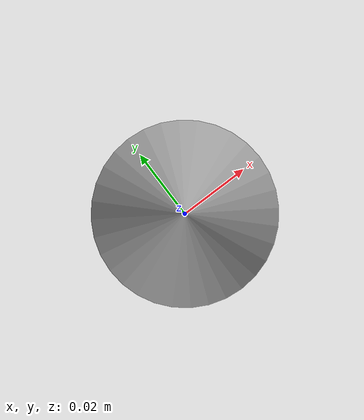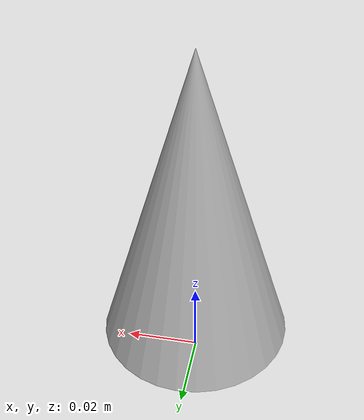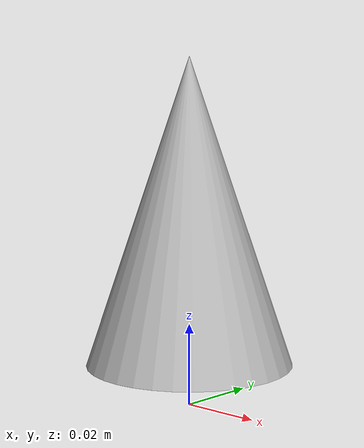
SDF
<sdf version='1.6'>
  <model name='cone'>
    <link name='object'>
      <pose frame=''>0 0 0.01 0 0 0</pose>
      <inertial>
        <pose frame=''>0 0 0.01875 0 0 0</pose>
        <mass>0.0049087</mass>
        <inertia>
          <ixx>1.49563e-05</ixx>
          <ixy>-6.69683e-38</ixy>
          <ixz>-5.00237e-38</ixz>
          <iyy>1.49563e-05</iyy>
          <iyz>1.81021e-21</iyz>
          <izz>9.20388e-06</izz>
        </inertia>
      </inertial>
      <collision name='object_collision'>
        <pose frame=''>0 0 0 1.5708 -0 0</pose>
        <geometry>
          <mesh>
            <scale>1 1 1</scale>
            <uri>model://cone/untitled.dae</uri>
          </mesh>
        </geometry>
        <surface>
          <friction>
            <ode>
              <mu>1.0</mu>
              <mu2>1.0</mu2>
            </ode>
          </friction>
          <contact>
            <ode>
              <kp>1000000.0</kp>
              <kd>1.0</kd>
              <min_depth>0.0000001</min_depth>
              <max_vel>0.1</max_vel>
            </ode>
          </contact>
        </surface>
      </collision>
      <visual name='object_visual'>
        <pose frame=''>0 0 0 1.5708 -0 0</pose>
        <geometry>
          <mesh>
            <scale>1 1 1</scale>
            <uri>model:///cone/untitled.dae</uri>
          </mesh>
        </geometry>
      </visual>
    </link>
  </model>
</sdf>
